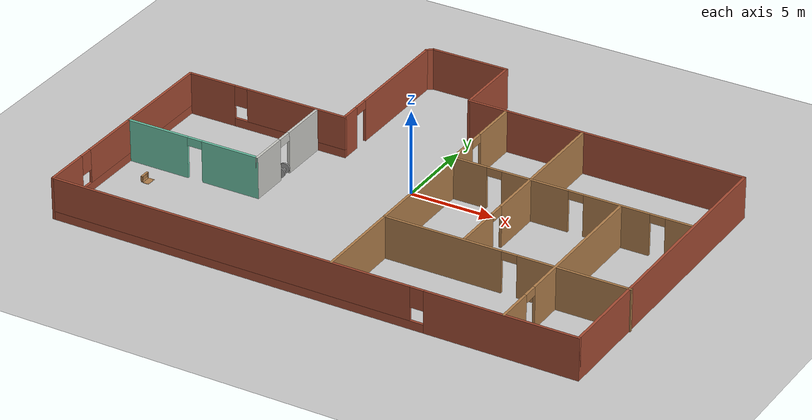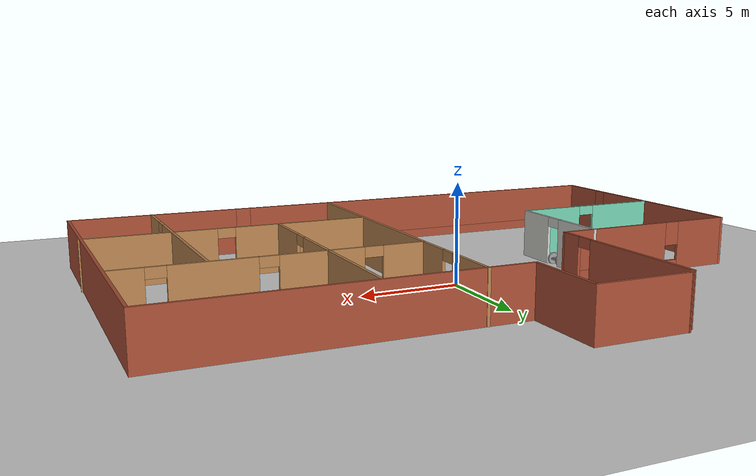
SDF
<sdf version="1.6">
 <world name="default">
  <model name="ground_plane">
   <static>1</static>
   <link name="link">
    <collision name="collision">
     <geometry><plane><normal>0 0 1</normal><size>100 100</size></plane></geometry>
     <surface>
      <contact><collide_bitmask>65535</collide_bitmask></contact>
      <friction><ode><mu>100</mu><mu2>50</mu2></ode></friction>
     </surface>
    </collision>
    <visual name="visual">
     <cast_shadows>0</cast_shadows>
     <geometry><plane><normal>0 0 1</normal><size>100 100</size></plane></geometry>
     <material>
      <script><uri>file://media/materials/scripts/gazebo.material</uri><name>Gazebo/Grey</name></script>
     </material>
    </visual>
   </link>
  </model>
  <model name="strange_room_project_1">
   <pose>0.77042 -0.5223 0 0 -0 0</pose>
   <link name="Wall_1">
    <collision name="Wall_1_Collision">
     <geometry><box><size>4.75 0.15 2.5</size></box></geometry>
     <pose>0 0 1.25 0 -0 0</pose>
    </collision>
    <visual name="Wall_1_Visual">
     <pose>0 0 1.25 0 -0 0</pose>
     <geometry><box><size>4.75 0.15 2.5</size></box></geometry>
     <material>
      <script><uri>file://media/materials/scripts/gazebo.material</uri><name>Gazebo/Bricks</name></script>
      <ambient>0.435294 0.796078 0.67451 1</ambient>
     </material>
     <meta><layer>0</layer></meta>
    </visual>
    <pose>-3.26123 11.2097 0 0 -0 0</pose>
   </link>
   <link name="Wall_10">
    <collision name="Wall_10_Collision">
     <geometry><box><size>0.540512 0.15 2.5</size></box></geometry>
     <pose>0 0 1.25 0 -0 0</pose>
    </collision>
    <visual name="Wall_10_Visual">
     <pose>0 0 1.25 0 -0 0</pose>
     <geometry><box><size>0.540512 0.15 2.5</size></box></geometry>
     <material>
      <script><uri>file://media/materials/scripts/gazebo.material</uri><name>Gazebo/Bricks</name></script>
      <ambient>0.435294 0.796078 0.67451 1</ambient>
     </material>
     <meta><layer>0</layer></meta>
    </visual>
    <pose>-5.71122 11.0847 0 0 -0 0.694738</pose>
   </link>
   <link name="Wall_12">
    <pose>-7.58378 -0.937122 0 0 0 -1.5708</pose>
    <visual name="Wall_12_Visual_0">
     <pose>-1.59262 0 1.25 0 -0 0</pose>
     <geometry><box><size>3.06475 0.15 2.5</size></box></geometry>
     <material>
      <script><uri>file://media/materials/scripts/gazebo.material</uri><name>Gazebo/CeilingTiled</name></script>
      <ambient>0.435294 0.796078 0.67451 1</ambient>
     </material>
     <meta><layer>0</layer></meta>
    </visual>
    <collision name="Wall_12_Collision_0">
     <geometry><box><size>3.06475 0.15 2.5</size></box></geometry>
     <pose>-1.59262 0 1.25 0 -0 0</pose>
    </collision>
    <visual name="Wall_12_Visual_1">
     <pose>1.98238 0 1.25 0 -0 0</pose>
     <geometry><box><size>2.28525 0.15 2.5</size></box></geometry>
     <material>
      <script><uri>file://media/materials/scripts/gazebo.material</uri><name>Gazebo/CeilingTiled</name></script>
      <ambient>0.435294 0.796078 0.67451 1</ambient>
     </material>
     <meta><layer>0</layer></meta>
    </visual>
    <collision name="Wall_12_Collision_1">
     <geometry><box><size>2.28525 0.15 2.5</size></box></geometry>
     <pose>1.98238 0 1.25 0 -0 0</pose>
    </collision>
    <visual name="Wall_12_Visual_2">
     <pose>0.389755 0 2.25 0 -0 0</pose>
     <geometry><box><size>0.9 0.15 0.5</size></box></geometry>
     <material>
      <script><uri>file://media/materials/scripts/gazebo.material</uri><name>Gazebo/CeilingTiled</name></script>
      <ambient>0.435294 0.796078 0.67451 1</ambient>
     </material>
     <meta><layer>0</layer></meta>
    </visual>
    <collision name="Wall_12_Collision_2">
     <geometry><box><size>0.9 0.15 0.5</size></box></geometry>
     <pose>0.389755 0 2.25 0 -0 0</pose>
    </collision>
   </link>
   <link name="Wall_15">
    <pose>-11.6338 -3.98712 0 0 -0 3.14159</pose>
    <visual name="Wall_15_Visual_0">
     <pose>-2.35227 0 1.25 0 -0 0</pose>
     <geometry><box><size>3.54546 0.15 2.5</size></box></geometry>
     <material>
      <script><uri>file://media/materials/scripts/gazebo.material</uri><name>Gazebo/Grey</name></script>
      <ambient>0.435294 0.796078 0.67451 1</ambient>
     </material>
     <meta><layer>0</layer></meta>
    </visual>
    <collision name="Wall_15_Collision_0">
     <geometry><box><size>3.54546 0.15 2.5</size></box></geometry>
     <pose>-2.35227 0 1.25 0 -0 0</pose>
    </collision>
    <visual name="Wall_15_Visual_1">
     <pose>2.22273 0 1.25 0 -0 0</pose>
     <geometry><box><size>3.80455 0.15 2.5</size></box></geometry>
     <material>
      <script><uri>file://media/materials/scripts/gazebo.material</uri><name>Gazebo/Grey</name></script>
      <ambient>0.435294 0.796078 0.67451 1</ambient>
     </material>
     <meta><layer>0</layer></meta>
    </visual>
    <collision name="Wall_15_Collision_1">
     <geometry><box><size>3.80455 0.15 2.5</size></box></geometry>
     <pose>2.22273 0 1.25 0 -0 0</pose>
    </collision>
    <visual name="Wall_15_Visual_2">
     <pose>-0.129545 0 2.25 0 -0 0</pose>
     <geometry><box><size>0.9 0.15 0.5</size></box></geometry>
     <material>
      <script><uri>file://media/materials/scripts/gazebo.material</uri><name>Gazebo/Grey</name></script>
      <ambient>0.435294 0.796078 0.67451 1</ambient>
     </material>
     <meta><layer>0</layer></meta>
    </visual>
    <collision name="Wall_15_Collision_2">
     <geometry><box><size>0.9 0.15 0.5</size></box></geometry>
     <pose>-0.129545 0 2.25 0 -0 0</pose>
    </collision>
   </link>
   <link name="Wall_17">
    <pose>1.35237 -2.03802 0 0 0 -1.5708</pose>
    <visual name="Wall_17_Visual_0">
     <pose>-7.7112 0 1.25 0 -0 0</pose>
     <geometry><box><size>3.07761 0.15 2.5</size></box></geometry>
     <material>
      <script><uri>file://media/materials/scripts/gazebo.material</uri><name>Gazebo/Wood</name></script>
      <ambient>0.435294 0.796078 0.67451 1</ambient>
     </material>
     <meta><layer>0</layer></meta>
    </visual>
    <collision name="Wall_17_Collision_0">
     <geometry><box><size>3.07761 0.15 2.5</size></box></geometry>
     <pose>-7.7112 0 1.25 0 -0 0</pose>
    </collision>
    <visual name="Wall_17_Visual_1">
     <pose>1.9888 0 1.25 0 -0 0</pose>
     <geometry><box><size>14.5224 0.15 2.5</size></box></geometry>
     <material>
      <script><uri>file://media/materials/scripts/gazebo.material</uri><name>Gazebo/Wood</name></script>
      <ambient>0.435294 0.796078 0.67451 1</ambient>
     </material>
     <meta><layer>0</layer></meta>
    </visual>
    <collision name="Wall_17_Collision_1">
     <geometry><box><size>14.5224 0.15 2.5</size></box></geometry>
     <pose>1.9888 0 1.25 0 -0 0</pose>
    </collision>
    <visual name="Wall_17_Visual_2">
     <pose>-5.72239 0 2.25 0 -0 0</pose>
     <geometry><box><size>0.9 0.15 0.5</size></box></geometry>
     <material>
      <script><uri>file://media/materials/scripts/gazebo.material</uri><name>Gazebo/Wood</name></script>
      <ambient>0.435294 0.796078 0.67451 1</ambient>
     </material>
     <meta><layer>0</layer></meta>
    </visual>
    <collision name="Wall_17_Collision_2">
     <geometry><box><size>0.9 0.15 0.5</size></box></geometry>
     <pose>-5.72239 0 2.25 0 -0 0</pose>
    </collision>
   </link>
   <link name="Wall_19">
    <pose>8.46168 1.25779 0 0 -0 0</pose>
    <visual name="Wall_19_Visual_0">
     <pose>-6.07739 0 1.25 0 -0 0</pose>
     <geometry><box><size>2.09521 0.15 2.5</size></box></geometry>
     <material>
      <script><uri>file://media/materials/scripts/gazebo.material</uri><name>Gazebo/Wood</name></script>
      <ambient>0.435294 0.796078 0.67451 1</ambient>
     </material>
     <meta><layer>0</layer></meta>
    </visual>
    <collision name="Wall_19_Collision_0">
     <geometry><box><size>2.09521 0.15 2.5</size></box></geometry>
     <pose>-6.07739 0 1.25 0 -0 0</pose>
    </collision>
    <visual name="Wall_19_Visual_1">
     <pose>-2.13756 0 1.25 0 -0 0</pose>
     <geometry><box><size>3.98446 0.15 2.5</size></box></geometry>
     <material>
      <script><uri>file://media/materials/scripts/gazebo.material</uri><name>Gazebo/Wood</name></script>
      <ambient>0.435294 0.796078 0.67451 1</ambient>
     </material>
     <meta><layer>0</layer></meta>
    </visual>
    <collision name="Wall_19_Collision_1">
     <geometry><box><size>3.98446 0.15 2.5</size></box></geometry>
     <pose>-2.13756 0 1.25 0 -0 0</pose>
    </collision>
    <visual name="Wall_19_Visual_2">
     <pose>2.70297 0 1.25 0 -0 0</pose>
     <geometry><box><size>3.8966 0.15 2.5</size></box></geometry>
     <material>
      <script><uri>file://media/materials/scripts/gazebo.material</uri><name>Gazebo/Wood</name></script>
      <ambient>0.435294 0.796078 0.67451 1</ambient>
     </material>
     <meta><layer>0</layer></meta>
    </visual>
    <collision name="Wall_19_Collision_2">
     <geometry><box><size>3.8966 0.15 2.5</size></box></geometry>
     <pose>2.70297 0 1.25 0 -0 0</pose>
    </collision>
    <visual name="Wall_19_Visual_3">
     <pose>6.33814 0 1.25 0 -0 0</pose>
     <geometry><box><size>1.57373 0.15 2.5</size></box></geometry>
     <material>
      <script><uri>file://media/materials/scripts/gazebo.material</uri><name>Gazebo/Wood</name></script>
      <ambient>0.435294 0.796078 0.67451 1</ambient>
     </material>
     <meta><layer>0</layer></meta>
    </visual>
    <collision name="Wall_19_Collision_3">
     <geometry><box><size>1.57373 0.15 2.5</size></box></geometry>
     <pose>6.33814 0 1.25 0 -0 0</pose>
    </collision>
    <visual name="Wall_19_Visual_4">
     <pose>-4.57979 0 2.25 0 -0 0</pose>
     <geometry><box><size>0.9 0.15 0.5</size></box></geometry>
     <material>
      <script><uri>file://media/materials/scripts/gazebo.material</uri><name>Gazebo/Wood</name></script>
      <ambient>0.435294 0.796078 0.67451 1</ambient>
     </material>
     <meta><layer>0</layer></meta>
    </visual>
    <collision name="Wall_19_Collision_4">
     <geometry><box><size>0.9 0.15 0.5</size></box></geometry>
     <pose>-4.57979 0 2.25 0 -0 0</pose>
    </collision>
    <visual name="Wall_19_Visual_5">
     <pose>0.304668 0 2.25 0 -0 0</pose>
     <geometry><box><size>0.9 0.15 0.5</size></box></geometry>
     <material>
      <script><uri>file://media/materials/scripts/gazebo.material</uri><name>Gazebo/Wood</name></script>
      <ambient>0.435294 0.796078 0.67451 1</ambient>
     </material>
     <meta><layer>0</layer></meta>
    </visual>
    <collision name="Wall_19_Collision_5">
     <geometry><box><size>0.9 0.15 0.5</size></box></geometry>
     <pose>0.304668 0 2.25 0 -0 0</pose>
    </collision>
    <visual name="Wall_19_Visual_6">
     <pose>5.10127 0 2.25 0 -0 0</pose>
     <geometry><box><size>0.9 0.15 0.5</size></box></geometry>
     <material>
      <script><uri>file://media/materials/scripts/gazebo.material</uri><name>Gazebo/Wood</name></script>
      <ambient>0.435294 0.796078 0.67451 1</ambient>
     </material>
     <meta><layer>0</layer></meta>
    </visual>
    <collision name="Wall_19_Collision_6">
     <geometry><box><size>0.9 0.15 0.5</size></box></geometry>
     <pose>5.10127 0 2.25 0 -0 0</pose>
    </collision>
   </link>
   <link name="Wall_2">
    <collision name="Wall_2_Collision">
     <geometry><box><size>4.25 0.15 2.5</size></box></geometry>
     <pose>0 0 1.25 0 -0 0</pose>
    </collision>
    <visual name="Wall_2_Visual">
     <pose>0 0 1.25 0 -0 0</pose>
     <geometry><box><size>4.25 0.15 2.5</size></box></geometry>
     <material>
      <script><uri>file://media/materials/scripts/gazebo.material</uri><name>Gazebo/Bricks</name></script>
      <ambient>0.435294 0.796078 0.67451 1</ambient>
     </material>
     <meta><layer>0</layer></meta>
    </visual>
    <pose>-0.961225 9.15968 0 0 0 -1.5708</pose>
   </link>
   <link name="Wall_3">
    <collision name="Wall_3_Collision">
     <geometry><box><size>16.75 0.15 2.5</size></box></geometry>
     <pose>0 0 1.25 0 -0 0</pose>
    </collision>
    <visual name="Wall_3_Visual">
     <pose>0 0 1.25 0 -0 0</pose>
     <geometry><box><size>16.75 0.15 2.5</size></box></geometry>
     <material>
      <script><uri>file://media/materials/scripts/gazebo.material</uri><name>Gazebo/Bricks</name></script>
      <ambient>0.435294 0.796078 0.67451 1</ambient>
     </material>
     <meta><layer>0</layer></meta>
    </visual>
    <pose>7.33878 7.10969 0 0 -0 0</pose>
   </link>
   <link name="Wall_4">
    <collision name="Wall_4_Collision">
     <geometry><box><size>18.5 0.15 2.5</size></box></geometry>
     <pose>0 0 1.25 0 -0 0</pose>
    </collision>
    <visual name="Wall_4_Visual">
     <pose>0 0 1.25 0 -0 0</pose>
     <geometry><box><size>18.5 0.15 2.5</size></box></geometry>
     <material>
      <script><uri>file://media/materials/scripts/gazebo.material</uri><name>Gazebo/Bricks</name></script>
      <ambient>0.435294 0.796078 0.67451 1</ambient>
     </material>
     <meta><layer>0</layer></meta>
    </visual>
    <pose>15.6388 -2.06532 0 0 0 -1.5708</pose>
   </link>
   <link name="Wall_5">
    <pose>-0.036225 -11.2403 0 0 -0 3.14159</pose>
    <visual name="Wall_5_Visual_0">
     <pose>-11.2976 0 1.25 0 -0 0</pose>
     <geometry><box><size>8.90478 0.15 2.5</size></box></geometry>
     <material>
      <script><uri>file://media/materials/scripts/gazebo.material</uri><name>Gazebo/Bricks</name></script>
      <ambient>0.435294 0.796078 0.67451 1</ambient>
     </material>
     <meta><layer>0</layer></meta>
    </visual>
    <collision name="Wall_5_Collision_0">
     <geometry><box><size>8.90478 0.15 2.5</size></box></geometry>
     <pose>-11.2976 0 1.25 0 -0 0</pose>
    </collision>
    <visual name="Wall_5_Visual_1">
     <pose>4.45239 0 0.25 0 -0 0</pose>
     <geometry><box><size>22.5952 0.15 0.5</size></box></geometry>
     <material>
      <script><uri>file://media/materials/scripts/gazebo.material</uri><name>Gazebo/Bricks</name></script>
      <ambient>0.435294 0.796078 0.67451 1</ambient>
     </material>
     <meta><layer>0</layer></meta>
    </visual>
    <collision name="Wall_5_Collision_1">
     <geometry><box><size>22.5952 0.15 0.5</size></box></geometry>
     <pose>4.45239 0 0.25 0 -0 0</pose>
    </collision>
    <visual name="Wall_5_Visual_2">
     <pose>4.85239 0 1.5 0 -0 0</pose>
     <geometry><box><size>21.7952 0.15 2</size></box></geometry>
     <material>
      <script><uri>file://media/materials/scripts/gazebo.material</uri><name>Gazebo/Bricks</name></script>
      <ambient>0.435294 0.796078 0.67451 1</ambient>
     </material>
     <meta><layer>0</layer></meta>
    </visual>
    <collision name="Wall_5_Collision_2">
     <geometry><box><size>21.7952 0.15 2</size></box></geometry>
     <pose>4.85239 0 1.5 0 -0 0</pose>
    </collision>
    <visual name="Wall_5_Visual_3">
     <pose>-6.44522 0 1.9 0 -0 0</pose>
     <geometry><box><size>0.8 0.15 1.2</size></box></geometry>
     <material>
      <script><uri>file://media/materials/scripts/gazebo.material</uri><name>Gazebo/Bricks</name></script>
      <ambient>0.435294 0.796078 0.67451 1</ambient>
     </material>
     <meta><layer>0</layer></meta>
    </visual>
    <collision name="Wall_5_Collision_3">
     <geometry><box><size>0.8 0.15 1.2</size></box></geometry>
     <pose>-6.44522 0 1.9 0 -0 0</pose>
    </collision>
   </link>
   <link name="Wall_6">
    <pose>-15.7112 -4.56531 0 0 -0 1.5708</pose>
    <visual name="Wall_6_Visual_0">
     <pose>-5.38753 0 1.25 0 -0 0</pose>
     <geometry><box><size>2.72495 0.15 2.5</size></box></geometry>
     <material>
      <script><uri>file://media/materials/scripts/gazebo.material</uri><name>Gazebo/Bricks</name></script>
      <ambient>0.435294 0.796078 0.67451 1</ambient>
     </material>
     <meta><layer>0</layer></meta>
    </visual>
    <collision name="Wall_6_Collision_0">
     <geometry><box><size>2.72495 0.15 2.5</size></box></geometry>
     <pose>-5.38753 0 1.25 0 -0 0</pose>
    </collision>
    <visual name="Wall_6_Visual_1">
     <pose>1.36247 0 0.25 0 -0 0</pose>
     <geometry><box><size>10.7751 0.15 0.5</size></box></geometry>
     <material>
      <script><uri>file://media/materials/scripts/gazebo.material</uri><name>Gazebo/Bricks</name></script>
      <ambient>0.435294 0.796078 0.67451 1</ambient>
     </material>
     <meta><layer>0</layer></meta>
    </visual>
    <collision name="Wall_6_Collision_1">
     <geometry><box><size>10.7751 0.15 0.5</size></box></geometry>
     <pose>1.36247 0 0.25 0 -0 0</pose>
    </collision>
    <visual name="Wall_6_Visual_2">
     <pose>1.76247 0 1.5 0 -0 0</pose>
     <geometry><box><size>9.97505 0.15 2</size></box></geometry>
     <material>
      <script><uri>file://media/materials/scripts/gazebo.material</uri><name>Gazebo/Bricks</name></script>
      <ambient>0.435294 0.796078 0.67451 1</ambient>
     </material>
     <meta><layer>0</layer></meta>
    </visual>
    <collision name="Wall_6_Collision_2">
     <geometry><box><size>9.97505 0.15 2</size></box></geometry>
     <pose>1.76247 0 1.5 0 -0 0</pose>
    </collision>
    <visual name="Wall_6_Visual_3">
     <pose>-3.62505 0 1.9 0 -0 0</pose>
     <geometry><box><size>0.8 0.15 1.2</size></box></geometry>
     <material>
      <script><uri>file://media/materials/scripts/gazebo.material</uri><name>Gazebo/Bricks</name></script>
      <ambient>0.435294 0.796078 0.67451 1</ambient>
     </material>
     <meta><layer>0</layer></meta>
    </visual>
    <collision name="Wall_6_Collision_3">
     <geometry><box><size>0.8 0.15 1.2</size></box></geometry>
     <pose>-3.62505 0 1.9 0 -0 0</pose>
    </collision>
   </link>
   <link name="Wall_65">
    <pose>8.53623 -5.87592 0 0 -0 3.14159</pose>
    <visual name="Wall_65_Visual_0">
     <pose>-3.95776 0 1.25 0 -0 0</pose>
     <geometry><box><size>6.58449 0.15 2.5</size></box></geometry>
     <material>
      <script><uri>file://media/materials/scripts/gazebo.material</uri><name>Gazebo/Wood</name></script>
      <ambient>0.435294 0.796078 0.67451 1</ambient>
     </material>
     <meta><layer>0</layer></meta>
    </visual>
    <collision name="Wall_65_Collision_0">
     <geometry><box><size>6.58449 0.15 2.5</size></box></geometry>
     <pose>-3.95776 0 1.25 0 -0 0</pose>
    </collision>
    <visual name="Wall_65_Visual_1">
     <pose>3.74224 0 1.25 0 -0 0</pose>
     <geometry><box><size>7.01551 0.15 2.5</size></box></geometry>
     <material>
      <script><uri>file://media/materials/scripts/gazebo.material</uri><name>Gazebo/Wood</name></script>
      <ambient>0.435294 0.796078 0.67451 1</ambient>
     </material>
     <meta><layer>0</layer></meta>
    </visual>
    <collision name="Wall_65_Collision_1">
     <geometry><box><size>7.01551 0.15 2.5</size></box></geometry>
     <pose>3.74224 0 1.25 0 -0 0</pose>
    </collision>
    <visual name="Wall_65_Visual_2">
     <pose>-0.215513 0 2.25 0 -0 0</pose>
     <geometry><box><size>0.9 0.15 0.5</size></box></geometry>
     <material>
      <script><uri>file://media/materials/scripts/gazebo.material</uri><name>Gazebo/Wood</name></script>
      <ambient>0.435294 0.796078 0.67451 1</ambient>
     </material>
     <meta><layer>0</layer></meta>
    </visual>
    <collision name="Wall_65_Collision_2">
     <geometry><box><size>0.9 0.15 0.5</size></box></geometry>
     <pose>-0.215513 0 2.25 0 -0 0</pose>
    </collision>
   </link>
   <link name="Wall_7">
    <pose>-10.7862 2.10968 0 0 -0 0</pose>
    <visual name="Wall_7_Visual_0">
     <pose>-3.51411 0 1.25 0 -0 0</pose>
     <geometry><box><size>2.97177 0.15 2.5</size></box></geometry>
     <material>
      <script><uri>file://media/materials/scripts/gazebo.material</uri><name>Gazebo/Bricks</name></script>
      <ambient>0.435294 0.796078 0.67451 1</ambient>
     </material>
     <meta><layer>0</layer></meta>
    </visual>
    <collision name="Wall_7_Collision_0">
     <geometry><box><size>2.97177 0.15 2.5</size></box></geometry>
     <pose>-3.51411 0 1.25 0 -0 0</pose>
    </collision>
    <visual name="Wall_7_Visual_1">
     <pose>1.48589 0 0.25 0 -0 0</pose>
     <geometry><box><size>7.02823 0.15 0.5</size></box></geometry>
     <material>
      <script><uri>file://media/materials/scripts/gazebo.material</uri><name>Gazebo/Bricks</name></script>
      <ambient>0.435294 0.796078 0.67451 1</ambient>
     </material>
     <meta><layer>0</layer></meta>
    </visual>
    <collision name="Wall_7_Collision_1">
     <geometry><box><size>7.02823 0.15 0.5</size></box></geometry>
     <pose>1.48589 0 0.25 0 -0 0</pose>
    </collision>
    <visual name="Wall_7_Visual_2">
     <pose>1.88589 0 1.5 0 -0 0</pose>
     <geometry><box><size>6.22823 0.15 2</size></box></geometry>
     <material>
      <script><uri>file://media/materials/scripts/gazebo.material</uri><name>Gazebo/Bricks</name></script>
      <ambient>0.435294 0.796078 0.67451 1</ambient>
     </material>
     <meta><layer>0</layer></meta>
    </visual>
    <collision name="Wall_7_Collision_2">
     <geometry><box><size>6.22823 0.15 2</size></box></geometry>
     <pose>1.88589 0 1.5 0 -0 0</pose>
    </collision>
    <visual name="Wall_7_Visual_3">
     <pose>-1.62823 0 1.9 0 -0 0</pose>
     <geometry><box><size>0.8 0.15 1.2</size></box></geometry>
     <material>
      <script><uri>file://media/materials/scripts/gazebo.material</uri><name>Gazebo/Bricks</name></script>
      <ambient>0.435294 0.796078 0.67451 1</ambient>
     </material>
     <meta><layer>0</layer></meta>
    </visual>
    <collision name="Wall_7_Collision_3">
     <geometry><box><size>0.8 0.15 1.2</size></box></geometry>
     <pose>-1.62823 0 1.9 0 -0 0</pose>
    </collision>
   </link>
   <link name="Wall_74">
    <pose>11.3966 -5.06353 0 0 -0 1.5708</pose>
    <visual name="Wall_74_Visual_0">
     <pose>-5.1078 0 1.25 0 -0 0</pose>
     <geometry><box><size>2.2844 0.15 2.5</size></box></geometry>
     <material>
      <script><uri>file://media/materials/scripts/gazebo.material</uri><name>Gazebo/Wood</name></script>
      <ambient>0.435294 0.796078 0.67451 1</ambient>
     </material>
     <meta><layer>0</layer></meta>
    </visual>
    <collision name="Wall_74_Collision_0">
     <geometry><box><size>2.2844 0.15 2.5</size></box></geometry>
     <pose>-5.1078 0 1.25 0 -0 0</pose>
    </collision>
    <visual name="Wall_74_Visual_1">
     <pose>1.5922 0 1.25 0 -0 0</pose>
     <geometry><box><size>9.3156 0.15 2.5</size></box></geometry>
     <material>
      <script><uri>file://media/materials/scripts/gazebo.material</uri><name>Gazebo/Wood</name></script>
      <ambient>0.435294 0.796078 0.67451 1</ambient>
     </material>
     <meta><layer>0</layer></meta>
    </visual>
    <collision name="Wall_74_Collision_1">
     <geometry><box><size>9.3156 0.15 2.5</size></box></geometry>
     <pose>1.5922 0 1.25 0 -0 0</pose>
    </collision>
    <visual name="Wall_74_Visual_2">
     <pose>-3.5156 0 2.25 0 -0 0</pose>
     <geometry><box><size>0.9 0.15 0.5</size></box></geometry>
     <material>
      <script><uri>file://media/materials/scripts/gazebo.material</uri><name>Gazebo/Wood</name></script>
      <ambient>0.435294 0.796078 0.67451 1</ambient>
     </material>
     <meta><layer>0</layer></meta>
    </visual>
    <collision name="Wall_74_Collision_2">
     <geometry><box><size>0.9 0.15 0.5</size></box></geometry>
     <pose>-3.5156 0 2.25 0 -0 0</pose>
    </collision>
   </link>
   <link name="Wall_76">
    <pose>6.03149 0.555756 0 0 -0 1.5708</pose>
    <visual name="Wall_76_Visual_0">
     <pose>-4.96159 0 1.25 0 -0 0</pose>
     <geometry><box><size>3.07682 0.15 2.5</size></box></geometry>
     <material>
      <script><uri>file://media/materials/scripts/gazebo.material</uri><name>Gazebo/Wood</name></script>
      <ambient>0.435294 0.796078 0.67451 1</ambient>
     </material>
     <meta><layer>0</layer></meta>
    </visual>
    <collision name="Wall_76_Collision_0">
     <geometry><box><size>3.07682 0.15 2.5</size></box></geometry>
     <pose>-4.96159 0 1.25 0 -0 0</pose>
    </collision>
    <visual name="Wall_76_Visual_1">
     <pose>1.98841 0 1.25 0 -0 0</pose>
     <geometry><box><size>9.02318 0.15 2.5</size></box></geometry>
     <material>
      <script><uri>file://media/materials/scripts/gazebo.material</uri><name>Gazebo/Wood</name></script>
      <ambient>0.435294 0.796078 0.67451 1</ambient>
     </material>
     <meta><layer>0</layer></meta>
    </visual>
    <collision name="Wall_76_Collision_1">
     <geometry><box><size>9.02318 0.15 2.5</size></box></geometry>
     <pose>1.98841 0 1.25 0 -0 0</pose>
    </collision>
    <visual name="Wall_76_Visual_2">
     <pose>-2.97318 0 2.25 0 -0 0</pose>
     <geometry><box><size>0.9 0.15 0.5</size></box></geometry>
     <material>
      <script><uri>file://media/materials/scripts/gazebo.material</uri><name>Gazebo/Wood</name></script>
      <ambient>0.435294 0.796078 0.67451 1</ambient>
     </material>
     <meta><layer>0</layer></meta>
    </visual>
    <collision name="Wall_76_Collision_2">
     <geometry><box><size>0.9 0.15 0.5</size></box></geometry>
     <pose>-2.97318 0 2.25 0 -0 0</pose>
    </collision>
   </link>
   <link name="Wall_9">
    <pose>-5.86123 6.53468 0 0 -0 1.5708</pose>
    <visual name="Wall_9_Visual_0">
     <pose>-3.86428 0 1.25 0 -0 0</pose>
     <geometry><box><size>1.27144 0.15 2.5</size></box></geometry>
     <material>
      <script><uri>file://media/materials/scripts/gazebo.material</uri><name>Gazebo/Bricks</name></script>
      <ambient>0.435294 0.796078 0.67451 1</ambient>
     </material>
     <meta><layer>0</layer></meta>
    </visual>
    <collision name="Wall_9_Collision_0">
     <geometry><box><size>1.27144 0.15 2.5</size></box></geometry>
     <pose>-3.86428 0 1.25 0 -0 0</pose>
    </collision>
    <visual name="Wall_9_Visual_1">
     <pose>1.08572 0 1.25 0 -0 0</pose>
     <geometry><box><size>6.82856 0.15 2.5</size></box></geometry>
     <material>
      <script><uri>file://media/materials/scripts/gazebo.material</uri><name>Gazebo/Bricks</name></script>
      <ambient>0.435294 0.796078 0.67451 1</ambient>
     </material>
     <meta><layer>0</layer></meta>
    </visual>
    <collision name="Wall_9_Collision_1">
     <geometry><box><size>6.82856 0.15 2.5</size></box></geometry>
     <pose>1.08572 0 1.25 0 -0 0</pose>
    </collision>
    <visual name="Wall_9_Visual_2">
     <pose>-2.77856 0 2.25 0 -0 0</pose>
     <geometry><box><size>0.9 0.15 0.5</size></box></geometry>
     <material>
      <script><uri>file://media/materials/scripts/gazebo.material</uri><name>Gazebo/Bricks</name></script>
      <ambient>0.435294 0.796078 0.67451 1</ambient>
     </material>
     <meta><layer>0</layer></meta>
    </visual>
    <collision name="Wall_9_Collision_2">
     <geometry><box><size>0.9 0.15 0.5</size></box></geometry>
     <pose>-2.77856 0 2.25 0 -0 0</pose>
    </collision>
   </link>
   <static>1</static>
  </model>
  <model name="two_wheel_robot">
   <link name="link_0_clone">
    <pose>-4e-06 -0.250033 -1e-06 1.5707 -0 0</pose>
    <inertial>
     <mass>1</mass>
     <inertia><ixx>0.145833</ixx><ixy>0</ixy><ixz>0</ixz><iyy>0.145833</iyy><iyz>0</iyz><izz>0.125</izz></inertia>
    </inertial>
    <visual name="visual">
     <geometry><cylinder><radius>0.3</radius><length>0.1</length></cylinder></geometry>
     <material>
      <lighting>1</lighting>
      <script><uri>file://media/materials/scripts/gazebo.material</uri><name>Gazebo/Grey</name></script>
      <shader type="pixel"><normal_map>__default__</normal_map></shader>
      <ambient>0.3 0.3 0.3 1</ambient>
      <diffuse>0.7 0.7 0.7 1</diffuse>
      <specular>0.01 0.01 0.01 1</specular>
      <emissive>0 0 0 1</emissive>
     </material>
    </visual>
    <collision name="collision">
     <geometry><cylinder><radius>0.3</radius><length>0.1</length></cylinder></geometry>
     <surface>
      <friction>
       <ode><mu>1</mu><mu2>1</mu2><fdir1>0 0 0</fdir1><slip1>0</slip1><slip2>0</slip2></ode>
       <torsional>
        <coefficient>1</coefficient>
        <patch_radius>0</patch_radius>
        <surface_radius>0</surface_radius>
        <use_patch_radius>1</use_patch_radius>
        <ode><slip>0</slip></ode>
       </torsional>
      </friction>
      <bounce><restitution_coefficient>0</restitution_coefficient><threshold>1e+06</threshold></bounce>
      <contact>
       <collide_without_contact>0</collide_without_contact>
       <collide_without_contact_bitmask>1</collide_without_contact_bitmask>
       <collide_bitmask>1</collide_bitmask>
       <ode>
        <soft_cfm>0</soft_cfm>
        <soft_erp>0.2</soft_erp>
        <kp>1e+13</kp>
        <kd>1</kd>
        <max_vel>0.01</max_vel>
        <min_depth>0</min_depth>
       </ode>
       <bullet>
        <split_impulse>1</split_impulse>
        <split_impulse_penetration_threshold>-0.01</split_impulse_penetration_threshold>
        <soft_cfm>0</soft_cfm>
        <soft_erp>0.2</soft_erp>
        <kp>1e+13</kp>
        <kd>1</kd>
       </bullet>
      </contact>
     </surface>
    </collision>
   </link>
   <link name="link_0_clone_clone">
    <pose>0 0.319647 1e-06 1.5707 -0 0</pose>
    <inertial>
     <mass>1</mass>
     <inertia><ixx>0.145833</ixx><ixy>0</ixy><ixz>0</ixz><iyy>0.145833</iyy><iyz>0</iyz><izz>0.125</izz></inertia>
    </inertial>
    <visual name="visual">
     <geometry><cylinder><radius>0.3</radius><length>0.1</length></cylinder></geometry>
     <material>
      <lighting>1</lighting>
      <script><uri>file://media/materials/scripts/gazebo.material</uri><name>Gazebo/Grey</name></script>
      <shader type="pixel"><normal_map>__default__</normal_map></shader>
      <ambient>0.3 0.3 0.3 1</ambient>
      <diffuse>0.7 0.7 0.7 1</diffuse>
      <specular>0.01 0.01 0.01 1</specular>
      <emissive>0 0 0 1</emissive>
     </material>
    </visual>
    <collision name="collision">
     <geometry><cylinder><radius>0.3</radius><length>0.1</length></cylinder></geometry>
     <surface>
      <friction>
       <ode><mu>1</mu><mu2>1</mu2><fdir1>0 0 0</fdir1><slip1>0</slip1><slip2>0</slip2></ode>
       <torsional>
        <coefficient>1</coefficient>
        <patch_radius>0</patch_radius>
        <surface_radius>0</surface_radius>
        <use_patch_radius>1</use_patch_radius>
        <ode><slip>0</slip></ode>
       </torsional>
      </friction>
      <bounce><restitution_coefficient>0</restitution_coefficient><threshold>1e+06</threshold></bounce>
      <contact>
       <collide_without_contact>0</collide_without_contact>
       <collide_without_contact_bitmask>1</collide_without_contact_bitmask>
       <collide_bitmask>1</collide_bitmask>
       <ode>
        <soft_cfm>0</soft_cfm>
        <soft_erp>0.2</soft_erp>
        <kp>1e+13</kp>
        <kd>1</kd>
        <max_vel>0.01</max_vel>
        <min_depth>0</min_depth>
       </ode>
       <bullet>
        <split_impulse>1</split_impulse>
        <split_impulse_penetration_threshold>-0.01</split_impulse_penetration_threshold>
        <soft_cfm>0</soft_cfm>
        <soft_erp>0.2</soft_erp>
        <kp>1e+13</kp>
        <kd>1</kd>
       </bullet>
      </contact>
     </surface>
    </collision>
   </link>
   <link name="link_1">
    <pose>-0 -1e-06 0 0 -0 0</pose>
    <inertial>
     <mass>1</mass>
     <inertia>
      <ixx>0.166667</ixx>
      <ixy>0</ixy>
      <ixz>0</ixz>
      <iyy>0.166667</iyy>
      <iyz>0</iyz>
      <izz>0.166667</izz>
     </inertia>
    </inertial>
    <visual name="visual">
     <geometry><box><size>0.3 0.4 0.1</size></box></geometry>
     <material>
      <lighting>1</lighting>
      <script><uri>file://media/materials/scripts/gazebo.material</uri><name>Gazebo/Grey</name></script>
      <shader type="pixel"><normal_map>__default__</normal_map></shader>
      <ambient>0.3 0.3 0.3 1</ambient>
      <diffuse>0.7 0.7 0.7 1</diffuse>
      <specular>0.01 0.01 0.01 1</specular>
      <emissive>0 0 0 1</emissive>
     </material>
    </visual>
    <collision name="collision">
     <geometry><box><size>0.3 0.4 0.1</size></box></geometry>
     <surface>
      <friction>
       <ode><mu>1</mu><mu2>1</mu2><fdir1>0 0 0</fdir1><slip1>0</slip1><slip2>0</slip2></ode>
       <torsional>
        <coefficient>1</coefficient>
        <patch_radius>0</patch_radius>
        <surface_radius>0</surface_radius>
        <use_patch_radius>1</use_patch_radius>
        <ode><slip>0</slip></ode>
       </torsional>
      </friction>
      <bounce><restitution_coefficient>0</restitution_coefficient><threshold>1e+06</threshold></bounce>
      <contact>
       <collide_without_contact>0</collide_without_contact>
       <collide_without_contact_bitmask>1</collide_without_contact_bitmask>
       <collide_bitmask>1</collide_bitmask>
       <ode>
        <soft_cfm>0</soft_cfm>
        <soft_erp>0.2</soft_erp>
        <kp>1e+13</kp>
        <kd>1</kd>
        <max_vel>0.01</max_vel>
        <min_depth>0</min_depth>
       </ode>
       <bullet>
        <split_impulse>1</split_impulse>
        <split_impulse_penetration_threshold>-0.01</split_impulse_penetration_threshold>
        <soft_cfm>0</soft_cfm>
        <soft_erp>0.2</soft_erp>
        <kp>1e+13</kp>
        <kd>1</kd>
       </bullet>
      </contact>
     </surface>
    </collision>
   </link>
   <joint name="link_1_JOINT_0" type="revolute">
    <parent>link_1</parent>
    <child>link_0_clone</child>
    <axis>
     <xyz>0 0 1</xyz>
     <use_parent_model_frame>0</use_parent_model_frame>
     <limit>
      <lower>-1.79769e+308</lower>
      <upper>1.79769e+308</upper>
      <effort>-1</effort>
      <velocity>-1</velocity>
     </limit>
     <dynamics>
      <spring_reference>0</spring_reference>
      <spring_stiffness>0</spring_stiffness>
      <damping>0</damping>
     </dynamics>
    </axis>
    <physics>
     <ode><limit><cfm>0</cfm><erp>0.2</erp></limit><suspension><cfm>0</cfm><erp>0.2</erp></suspension></ode>
    </physics>
   </joint>
   <joint name="link_1_JOINT_1" type="revolute">
    <parent>link_1</parent>
    <child>link_0_clone_clone</child>
    <axis>
     <xyz>0 0 1</xyz>
     <use_parent_model_frame>0</use_parent_model_frame>
     <limit>
      <lower>-1.79769e+308</lower>
      <upper>1.79769e+308</upper>
      <effort>-1</effort>
      <velocity>-1</velocity>
     </limit>
     <dynamics>
      <spring_reference>0</spring_reference>
      <spring_stiffness>0</spring_stiffness>
      <damping>0</damping>
     </dynamics>
    </axis>
    <physics>
     <ode><limit><cfm>0</cfm><erp>0.2</erp></limit><suspension><cfm>0</cfm><erp>0.2</erp></suspension></ode>
    </physics>
   </joint>
   <static>0</static>
   <pose>-6.97482 -1.80897 0.300052 0.000187 -0.069978 0.109588</pose>
  </model>
  <model name="wooden_case">
   <link name="base">
    <pose>0 0 0.024 0 -0 0</pose>
    <inertial>
     <pose>-0.022184 0 0.171592 0 -0 0</pose>
     <mass>3.96264</mass>
     <inertia>
      <ixx>0.213536</ixx>
      <ixy>0</ixy>
      <ixz>0.000779377</ixz>
      <iyy>0.0708943</iyy>
      <iyz>0</iyz>
      <izz>0.154604</izz>
     </inertia>
    </inertial>
    <collision name="collision_back">
     <pose>-0.053975 0 0.1778 0 -0 0</pose>
     <geometry><box><size>0.01905 0.5461 0.3175</size></box></geometry>
     <surface>
      <contact>
       <poissons_ratio>0.347</poissons_ratio>
       <elastic_modulus>8.8e+09</elastic_modulus>
       <ode><kp>100000</kp><kd>100</kd><max_vel>100</max_vel><min_depth>0.001</min_depth></ode>
      </contact>
      <friction>
       <torsional>
        <coefficient>1</coefficient>
        <use_patch_radius>0</use_patch_radius>
        <surface_radius>0.01</surface_radius>
       </torsional>
      </friction>
     </surface>
    </collision>
    <visual name="visual_back">
     <pose>-0.053975 0 0.1778 0 -0 0</pose>
     <geometry><box><size>0.01905 0.5461 0.3175</size></box></geometry>
     <material>
      <script><uri>file://media/materials/scripts/gazebo.material</uri><name>Gazebo/Wood</name></script>
     </material>
    </visual>
    <collision name="collision_bottom">
     <pose>0 0 0.009525 0 -0 0</pose>
     <geometry><box><size>0.127 0.5842 0.01905</size></box></geometry>
     <surface>
      <contact>
       <poissons_ratio>0.347</poissons_ratio>
       <elastic_modulus>8.8e+09</elastic_modulus>
       <ode><kp>100000</kp><kd>100</kd><max_vel>100</max_vel><min_depth>0.001</min_depth></ode>
      </contact>
      <friction>
       <torsional>
        <coefficient>1</coefficient>
        <use_patch_radius>0</use_patch_radius>
        <surface_radius>0.01</surface_radius>
       </torsional>
      </friction>
     </surface>
    </collision>
    <visual name="visual_bottom">
     <pose>0 0 0.009525 0 -0 0</pose>
     <geometry><box><size>0.127 0.5842 0.01905</size></box></geometry>
     <material>
      <script><uri>file://media/materials/scripts/gazebo.material</uri><name>Gazebo/Wood</name></script>
     </material>
    </visual>
    <collision name="collision_top">
     <pose>0 0 0.346075 0 -0 0</pose>
     <geometry><box><size>0.127 0.5842 0.01905</size></box></geometry>
     <surface>
      <contact>
       <poissons_ratio>0.347</poissons_ratio>
       <elastic_modulus>8.8e+09</elastic_modulus>
       <ode><kp>100000</kp><kd>100</kd><max_vel>100</max_vel><min_depth>0.001</min_depth></ode>
      </contact>
      <friction>
       <torsional>
        <coefficient>1</coefficient>
        <use_patch_radius>0</use_patch_radius>
        <surface_radius>0.01</surface_radius>
       </torsional>
      </friction>
     </surface>
    </collision>
    <visual name="visual_top">
     <pose>0 0 0.346075 0 -0 0</pose>
     <geometry><box><size>0.127 0.5842 0.01905</size></box></geometry>
     <material>
      <script><uri>file://media/materials/scripts/gazebo.material</uri><name>Gazebo/Wood</name></script>
     </material>
    </visual>
    <collision name="collision_left">
     <pose>0 -0.282575 0.1778 0 -0 0</pose>
     <geometry><box><size>0.127 0.01905 0.3175</size></box></geometry>
     <surface>
      <contact>
       <poissons_ratio>0.347</poissons_ratio>
       <elastic_modulus>8.8e+09</elastic_modulus>
       <ode><kp>100000</kp><kd>100</kd><max_vel>100</max_vel><min_depth>0.001</min_depth></ode>
      </contact>
      <friction>
       <torsional>
        <coefficient>1</coefficient>
        <use_patch_radius>0</use_patch_radius>
        <surface_radius>0.01</surface_radius>
       </torsional>
      </friction>
     </surface>
    </collision>
    <visual name="visual_left">
     <pose>0 -0.282575 0.1778 0 -0 0</pose>
     <geometry><box><size>0.127 0.01905 0.3175</size></box></geometry>
     <material>
      <script><uri>file://media/materials/scripts/gazebo.material</uri><name>Gazebo/Wood</name></script>
     </material>
    </visual>
    <collision name="collision_right">
     <pose>0 0.282575 0.1778 0 -0 0</pose>
     <geometry><box><size>0.127 0.01905 0.3175</size></box></geometry>
     <surface>
      <contact>
       <poissons_ratio>0.347</poissons_ratio>
       <elastic_modulus>8.8e+09</elastic_modulus>
       <ode><kp>100000</kp><kd>100</kd><max_vel>100</max_vel><min_depth>0.001</min_depth></ode>
      </contact>
      <friction>
       <torsional>
        <coefficient>1</coefficient>
        <use_patch_radius>0</use_patch_radius>
        <surface_radius>0.01</surface_radius>
       </torsional>
      </friction>
     </surface>
    </collision>
    <visual name="visual_right">
     <pose>0 0.282575 0.1778 0 -0 0</pose>
     <geometry><box><size>0.127 0.01905 0.3175</size></box></geometry>
     <material>
      <script><uri>file://media/materials/scripts/gazebo.material</uri><name>Gazebo/Wood</name></script>
     </material>
    </visual>
    <collision name="collision_block_left">
     <pose>0.0095 -0.2151 -0.012 0 -0 0</pose>
     <geometry><box><size>0.108 0.05 0.024</size></box></geometry>
     <surface>
      <contact>
       <poissons_ratio>0.347</poissons_ratio>
       <elastic_modulus>8.8e+09</elastic_modulus>
       <ode><kp>100000</kp><kd>100</kd><max_vel>100</max_vel><min_depth>0.001</min_depth></ode>
      </contact>
      <friction>
       <torsional>
        <coefficient>1</coefficient>
        <use_patch_radius>0</use_patch_radius>
        <surface_radius>0.01</surface_radius>
       </torsional>
      </friction>
     </surface>
    </collision>
    <visual name="visual_block_left">
     <pose>0.0095 -0.2151 -0.012 0 -0 0</pose>
     <geometry><box><size>0.108 0.05 0.024</size></box></geometry>
     <material>
      <script><uri>file://media/materials/scripts/gazebo.material</uri><name>Gazebo/Wood</name></script>
     </material>
    </visual>
    <collision name="collision_block_right">
     <pose>0.0095 0.2151 -0.012 0 -0 0</pose>
     <geometry><box><size>0.108 0.05 0.024</size></box></geometry>
     <surface>
      <contact>
       <poissons_ratio>0.347</poissons_ratio>
       <elastic_modulus>8.8e+09</elastic_modulus>
       <ode><kp>100000</kp><kd>100</kd><max_vel>100</max_vel><min_depth>0.001</min_depth></ode>
      </contact>
      <friction>
       <torsional>
        <coefficient>1</coefficient>
        <use_patch_radius>0</use_patch_radius>
        <surface_radius>0.01</surface_radius>
       </torsional>
      </friction>
     </surface>
    </collision>
    <visual name="visual_block_right">
     <pose>0.0095 0.2151 -0.012 0 -0 0</pose>
     <geometry><box><size>0.108 0.05 0.024</size></box></geometry>
     <material>
      <script><uri>file://media/materials/scripts/gazebo.material</uri><name>Gazebo/Wood</name></script>
     </material>
    </visual>
   </link>
   <link name="lid">
    <pose>0.243775 0 0.009525 0 -0 0</pose>
    <inertial>
     <mass>1.97874</mass>
     <inertia>
      <ixx>0.0563367</ixx>
      <ixy>0</ixy>
      <ixz>0</ixz>
      <iyy>0.020911</iyy>
      <iyz>0</iyz>
      <izz>0.0771281</izz>
     </inertia>
    </inertial>
    <collision name="collision">
     <geometry><box><size>0.3556 0.5842 0.01905</size></box></geometry>
     <surface>
      <contact>
       <poissons_ratio>0.347</poissons_ratio>
       <elastic_modulus>8.8e+09</elastic_modulus>
       <ode><kp>100000</kp><kd>100</kd><max_vel>100</max_vel><min_depth>0.001</min_depth></ode>
      </contact>
      <friction>
       <torsional>
        <coefficient>1</coefficient>
        <use_patch_radius>0</use_patch_radius>
        <surface_radius>0.01</surface_radius>
       </torsional>
      </friction>
     </surface>
    </collision>
    <visual name="visual">
     <geometry><box><size>0.3556 0.5842 0.01905</size></box></geometry>
     <material>
      <script><uri>file://media/materials/scripts/gazebo.material</uri><name>Gazebo/Wood</name></script>
     </material>
    </visual>
    <visual name="tee_nut_1">
     <pose>0.122 -0.216 0 0 -0 0</pose>
     <geometry><cylinder><radius>0.00635</radius><length>0.0192405</length></cylinder></geometry>
     <material>
      <script><uri>file://media/materials/scripts/gazebo.material</uri><name>Gazebo/Grey</name></script>
     </material>
    </visual>
    <visual name="tee_nut_2">
     <pose>0.122 -0.088 0 0 -0 0</pose>
     <geometry><cylinder><radius>0.00635</radius><length>0.0192405</length></cylinder></geometry>
     <material>
      <script><uri>file://media/materials/scripts/gazebo.material</uri><name>Gazebo/Grey</name></script>
     </material>
    </visual>
    <visual name="tee_nut_3">
     <pose>0.122 0.088 0 0 -0 0</pose>
     <geometry><cylinder><radius>0.00635</radius><length>0.0192405</length></cylinder></geometry>
     <material>
      <script><uri>file://media/materials/scripts/gazebo.material</uri><name>Gazebo/Grey</name></script>
     </material>
    </visual>
    <visual name="tee_nut_4">
     <pose>0.122 0.216 0 0 -0 0</pose>
     <geometry><cylinder><radius>0.00635</radius><length>0.0192405</length></cylinder></geometry>
     <material>
      <script><uri>file://media/materials/scripts/gazebo.material</uri><name>Gazebo/Grey</name></script>
     </material>
    </visual>
   </link>
   <joint name="lid_hinge" type="revolute">
    <pose>-0.1778 0 0.01905 0 -0 0</pose>
    <parent>base</parent>
    <child>lid</child>
    <axis>
     <xyz>0 1 0</xyz>
     <limit><upper>0.523599</upper><lower>-1.5708</lower></limit>
     <use_parent_model_frame>0</use_parent_model_frame>
     <dynamics><spring_reference>0</spring_reference><spring_stiffness>0</spring_stiffness></dynamics>
    </axis>
   </joint>
   <pose>-13.0612 -5.96161 -0.001057 0 -0.000428 0</pose>
  </model>
 </world>
</sdf>
